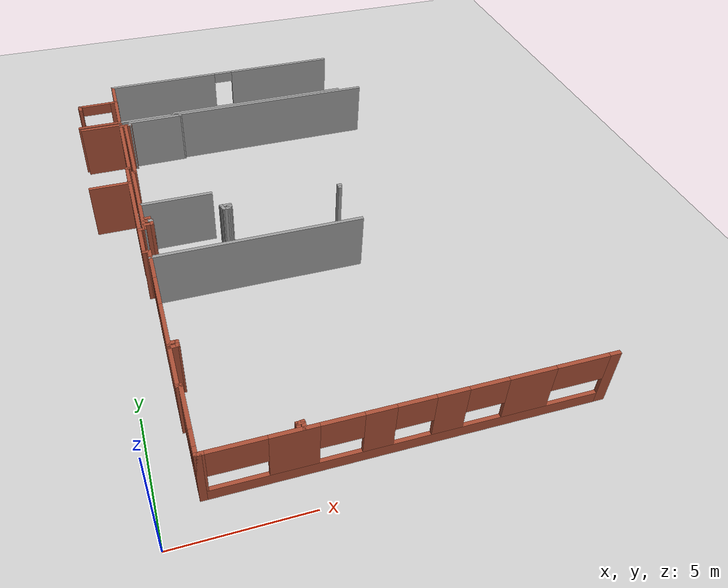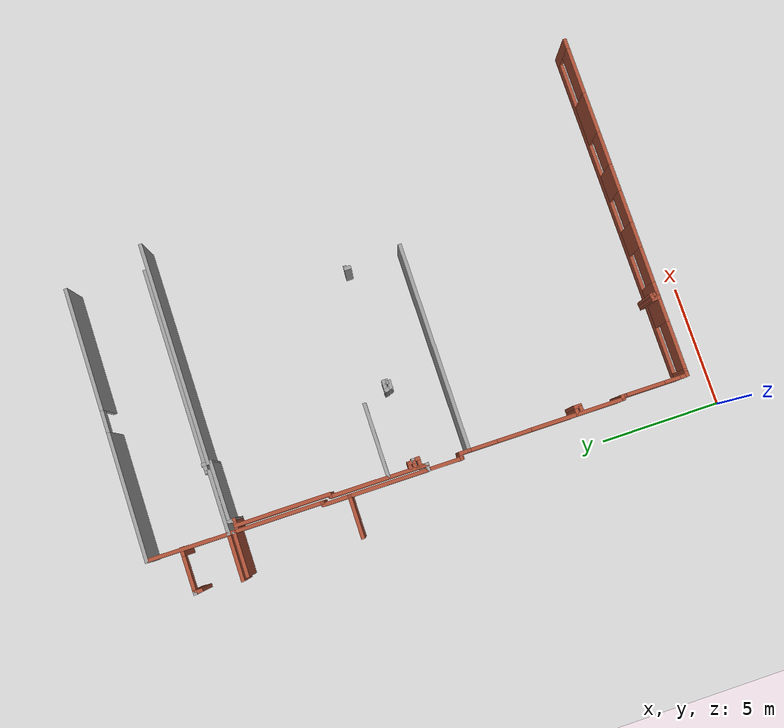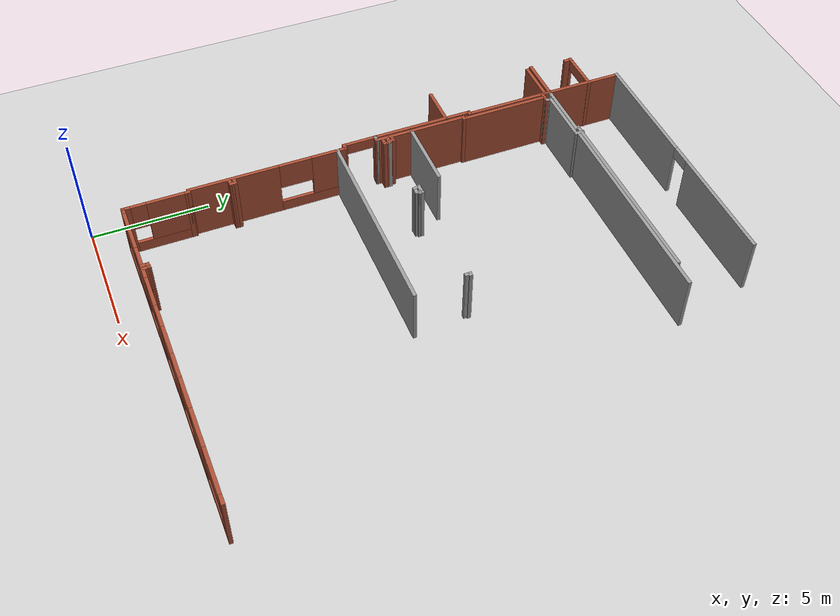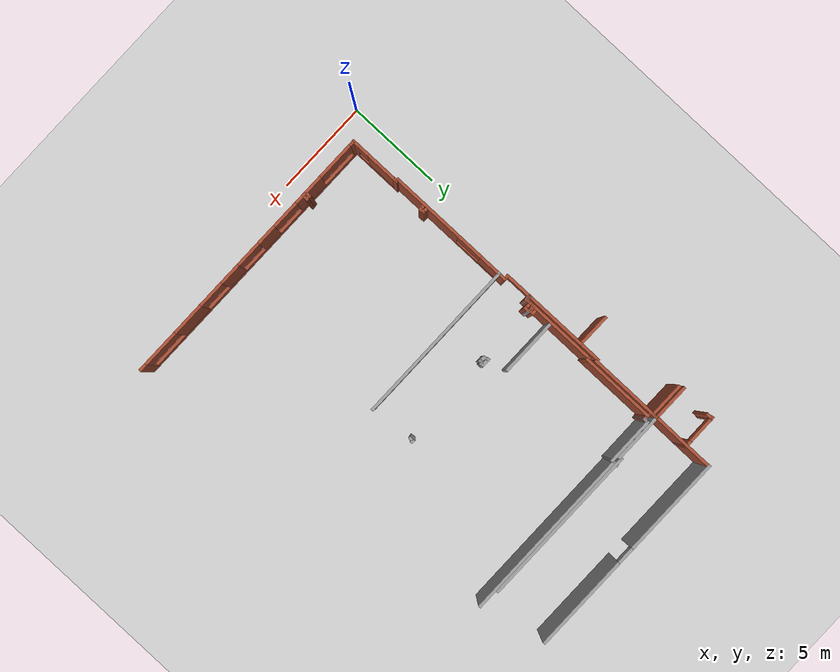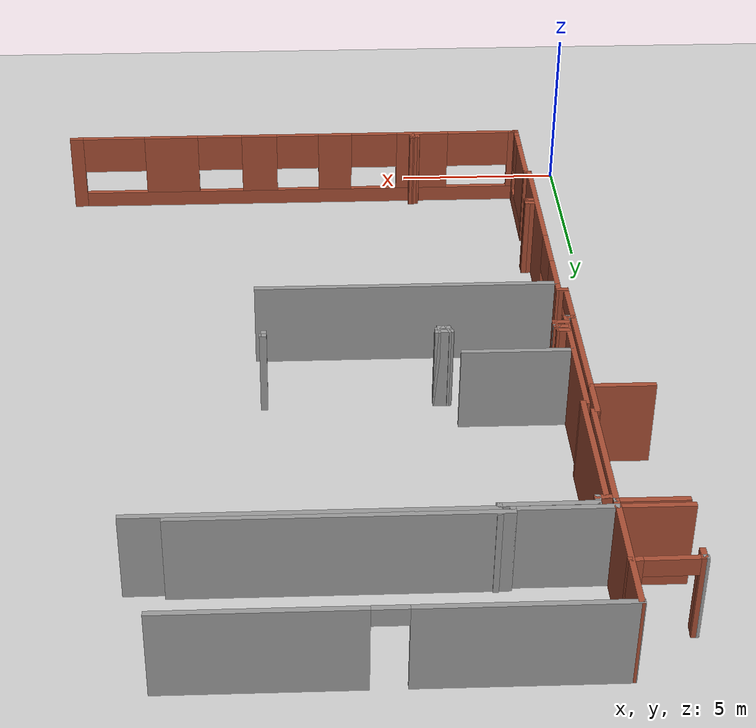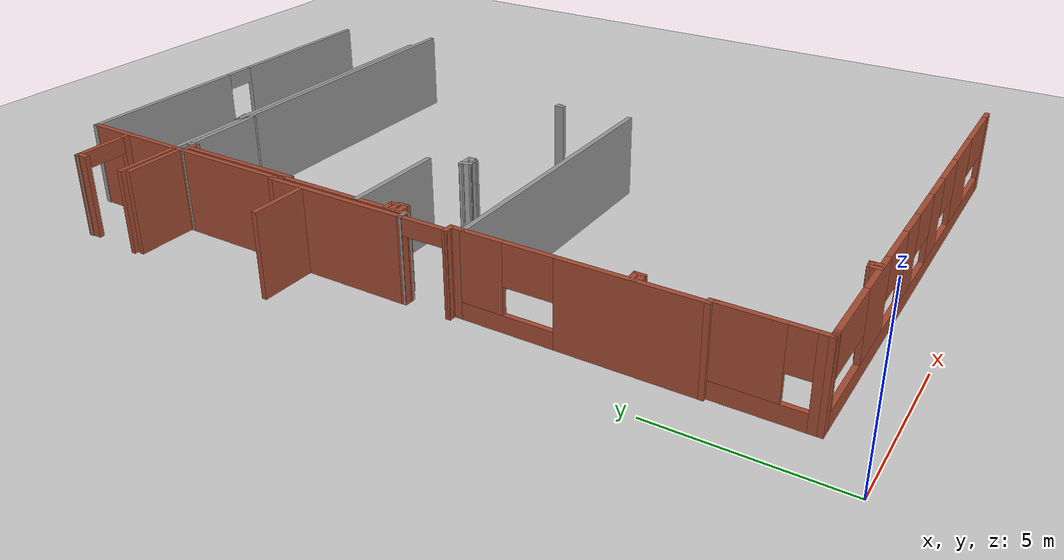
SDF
<sdf version="1.6">
 <world name="default">
  <model name="ground_plane">
   <static>1</static>
   <link name="link">
    <collision name="collision">
     <geometry><plane><normal>0 0 1</normal><size>100 100</size></plane></geometry>
     <surface><friction><ode><mu>100</mu><mu2>50</mu2></ode></friction></surface>
    </collision>
    <visual name="visual">
     <cast_shadows>0</cast_shadows>
     <geometry><plane><normal>0 0 1</normal><size>100 100</size></plane></geometry>
     <material>
      <script><uri>file://media/materials/scripts/gazebo.material</uri><name>Gazebo/Grey</name></script>
     </material>
    </visual>
   </link>
  </model>
  <model name="CVSSP">
   <pose>23.8714 24.094 0 0 -0 0</pose>
   <link name="Wall_440">
    <pose>-17.0303 -0.419062 0 0 -0 3.14158</pose>
    <visual name="Wall_440_Visual_0">
     <pose>-3.09878 0 1.25 0 -0 0</pose>
     <geometry><box><size>5.103 0.15 2.5</size></box></geometry>
     <material>
      <script><uri>file://media/materials/scripts/gazebo.material</uri><name>Gazebo/Grey</name></script>
      <ambient>0.588235 0.588235 0.588235 1</ambient>
     </material>
    </visual>
    <collision name="Wall_440_Collision_0">
     <geometry><box><size>5.103 0.15 2.5</size></box></geometry>
     <pose>-3.09878 0 1.25 0 -0 0</pose>
    </collision>
    <visual name="Wall_440_Visual_1">
     <pose>3.0015 0 1.25 0 -0 0</pose>
     <geometry><box><size>5.29756 0.15 2.5</size></box></geometry>
     <material>
      <script><uri>file://media/materials/scripts/gazebo.material</uri><name>Gazebo/Grey</name></script>
      <ambient>0.588235 0.588235 0.588235 1</ambient>
     </material>
    </visual>
    <collision name="Wall_440_Collision_1">
     <geometry><box><size>5.29756 0.15 2.5</size></box></geometry>
     <pose>3.0015 0 1.25 0 -0 0</pose>
    </collision>
    <visual name="Wall_440_Visual_2">
     <pose>-0.097282 0 2.25 0 -0 0</pose>
     <geometry><box><size>0.9 0.15 0.5</size></box></geometry>
     <material>
      <script><uri>file://media/materials/scripts/gazebo.material</uri><name>Gazebo/Grey</name></script>
      <ambient>0.588235 0.588235 0.588235 1</ambient>
     </material>
    </visual>
    <collision name="Wall_440_Collision_2">
     <geometry><box><size>0.9 0.15 0.5</size></box></geometry>
     <pose>-0.097282 0 2.25 0 -0 0</pose>
    </collision>
   </link>
   <link name="Wall_446">
    <collision name="Wall_446_Collision">
     <geometry><box><size>3.45993 0.15 2.5</size></box></geometry>
     <pose>0 0 1.25 0 -0 0</pose>
    </collision>
    <visual name="Wall_446_Visual">
     <pose>0 0 1.25 0 -0 0</pose>
     <geometry><box><size>3.45993 0.15 2.5</size></box></geometry>
     <material>
      <script><uri>file://media/materials/scripts/gazebo.material</uri><name>Gazebo/Bricks</name></script>
      <ambient>1 1 1 1</ambient>
     </material>
    </visual>
    <pose>-22.5968 -2.07393 0 0 0 -1.57608</pose>
   </link>
   <link name="Wall_447">
    <collision name="Wall_447_Collision">
     <geometry><box><size>2.66471 0.15 2.5</size></box></geometry>
     <pose>0 0 1.25 0 -0 0</pose>
    </collision>
    <visual name="Wall_447_Visual">
     <pose>0 0 1.25 0 -0 0</pose>
     <geometry><box><size>2.66471 0.15 2.5</size></box></geometry>
     <material>
      <script><uri>file://media/materials/scripts/gazebo.material</uri><name>Gazebo/Grey</name></script>
      <ambient>0.588235 0.588235 0.588235 1</ambient>
     </material>
    </visual>
    <pose>-21.3307 -3.72683 0 0 -0 0.001626</pose>
   </link>
   <link name="Wall_449">
    <collision name="Wall_449_Collision">
     <geometry><box><size>0.25 0.15 2.5</size></box></geometry>
     <pose>0 0 1.25 0 -0 0</pose>
    </collision>
    <visual name="Wall_449_Visual">
     <pose>0 0 1.25 0 -0 0</pose>
     <geometry><box><size>0.25 0.15 2.5</size></box></geometry>
     <material>
      <script><uri>file://media/materials/scripts/gazebo.material</uri><name>Gazebo/Grey</name></script>
      <ambient>1 1 1 1</ambient>
     </material>
    </visual>
    <pose>-20.0734 -3.67478 0 0 -0 1.5708</pose>
   </link>
   <link name="Wall_450">
    <collision name="Wall_450_Collision">
     <geometry><box><size>8.5 0.15 2.5</size></box></geometry>
     <pose>0 0 1.25 0 -0 0</pose>
    </collision>
    <visual name="Wall_450_Visual">
     <pose>0 0 1.25 0 -0 0</pose>
     <geometry><box><size>8.5 0.15 2.5</size></box></geometry>
     <material>
      <script><uri>file://media/materials/scripts/gazebo.material</uri><name>Gazebo/Grey</name></script>
      <ambient>0.588235 0.588235 0.588235 1</ambient>
     </material>
    </visual>
    <pose>-15.8984 -3.62478 0 0 -0 0</pose>
   </link>
   <link name="Wall_472">
    <pose>-23.462 -1.83453 0 0 0 -3.13211</pose>
    <visual name="Wall_472_Visual_0">
     <pose>-0.773733 0 1.25 0 -0 0</pose>
     <geometry><box><size>0.368389 0.15 2.5</size></box></geometry>
     <material>
      <script><uri>file://media/materials/scripts/gazebo.material</uri><name>Gazebo/Bricks</name></script>
      <ambient>1 1 1 1</ambient>
     </material>
    </visual>
    <collision name="Wall_472_Collision_0">
     <geometry><box><size>0.368389 0.15 2.5</size></box></geometry>
     <pose>-0.773733 0 1.25 0 -0 0</pose>
    </collision>
    <visual name="Wall_472_Visual_1">
     <pose>0.857678 0 1.25 0 -0 0</pose>
     <geometry><box><size>0.2005 0.15 2.5</size></box></geometry>
     <material>
      <script><uri>file://media/materials/scripts/gazebo.material</uri><name>Gazebo/Bricks</name></script>
      <ambient>1 1 1 1</ambient>
     </material>
    </visual>
    <collision name="Wall_472_Collision_1">
     <geometry><box><size>0.2005 0.15 2.5</size></box></geometry>
     <pose>0.857678 0 1.25 0 -0 0</pose>
    </collision>
    <visual name="Wall_472_Visual_2">
     <pose>0.083944 0 2.25 0 -0 0</pose>
     <geometry><box><size>1.34697 0.15 0.5</size></box></geometry>
     <material>
      <script><uri>file://media/materials/scripts/gazebo.material</uri><name>Gazebo/Bricks</name></script>
      <ambient>1 1 1 1</ambient>
     </material>
    </visual>
    <collision name="Wall_472_Collision_2">
     <geometry><box><size>1.34697 0.15 0.5</size></box></geometry>
     <pose>0.083944 0 2.25 0 -0 0</pose>
    </collision>
   </link>
   <link name="Wall_473">
    <collision name="Wall_473_Collision">
     <geometry><box><size>0.15 0.15 2.5</size></box></geometry>
     <pose>0 0 1.25 0 -0 0</pose>
    </collision>
    <visual name="Wall_473_Visual">
     <pose>0 0 1.25 0 -0 0</pose>
     <geometry><box><size>0.15 0.15 2.5</size></box></geometry>
     <material>
      <script><uri>file://media/materials/scripts/gazebo.material</uri><name>Gazebo/Grey</name></script>
      <ambient>1 1 1 1</ambient>
     </material>
    </visual>
    <pose>-24.3449 -1.8429 0 0 -0 0</pose>
   </link>
   <link name="Wall_476">
    <collision name="Wall_476_Collision">
     <geometry><box><size>0.342391 0.15 2.5</size></box></geometry>
     <pose>0 0 1.25 0 -0 0</pose>
    </collision>
    <visual name="Wall_476_Visual">
     <pose>0 0 1.25 0 -0 0</pose>
     <geometry><box><size>0.342391 0.15 2.5</size></box></geometry>
     <material>
      <script><uri>file://media/materials/scripts/gazebo.material</uri><name>Gazebo/Bricks</name></script>
      <ambient>1 1 1 1</ambient>
     </material>
    </visual>
    <pose>-24.3099 -1.99157 0 0 -0 1.5708</pose>
   </link>
   <link name="Wall_481">
    <collision name="Wall_481_Collision">
     <geometry><box><size>2 0.15 2.5</size></box></geometry>
     <pose>0 0 1.25 0 -0 0</pose>
    </collision>
    <visual name="Wall_481_Visual">
     <pose>0 0 1.25 0 -0 0</pose>
     <geometry><box><size>2 0.15 2.5</size></box></geometry>
     <material>
      <script><uri>file://media/materials/scripts/gazebo.material</uri><name>Gazebo/Bricks</name></script>
      <ambient>1 1 1 1</ambient>
     </material>
    </visual>
    <pose>-23.5131 -3.72887 0 0 -0 3.14159</pose>
   </link>
   <link name="Wall_483">
    <collision name="Wall_483_Collision">
     <geometry><box><size>0.368526 0.15 2.5</size></box></geometry>
     <pose>0 0 1.25 0 -0 0</pose>
    </collision>
    <visual name="Wall_483_Visual">
     <pose>0 0 1.25 0 -0 0</pose>
     <geometry><box><size>0.368526 0.15 2.5</size></box></geometry>
     <material>
      <script><uri>file://media/materials/scripts/gazebo.material</uri><name>Gazebo/Bricks</name></script>
      <ambient>1 1 1 1</ambient>
     </material>
    </visual>
    <pose>-22.5906 -3.83811 0 0 0 -1.59404</pose>
   </link>
   <link name="Wall_484">
    <collision name="Wall_484_Collision">
     <geometry><box><size>1.89901 0.15 2.5</size></box></geometry>
     <pose>0 0 1.25 0 -0 0</pose>
    </collision>
    <visual name="Wall_484_Visual">
     <pose>0 0 1.25 0 -0 0</pose>
     <geometry><box><size>1.89901 0.15 2.5</size></box></geometry>
     <material>
      <script><uri>file://media/materials/scripts/gazebo.material</uri><name>Gazebo/Bricks</name></script>
      <ambient>1 1 1 1</ambient>
     </material>
    </visual>
    <pose>-23.4677 -3.94734 0 0 -0 3.14159</pose>
   </link>
   <link name="Wall_486">
    <collision name="Wall_486_Collision">
     <geometry><box><size>0.44095 0.15 2.5</size></box></geometry>
     <pose>0 0 1.25 0 -0 0</pose>
    </collision>
    <visual name="Wall_486_Visual">
     <pose>0 0 1.25 0 -0 0</pose>
     <geometry><box><size>0.44095 0.15 2.5</size></box></geometry>
     <material>
      <script><uri>file://media/materials/scripts/gazebo.material</uri><name>Gazebo/Grey</name></script>
      <ambient>1 1 1 1</ambient>
     </material>
    </visual>
    <pose>-19.7491 -3.7278 0 0 0 -1.5708</pose>
   </link>
   <link name="Wall_487">
    <collision name="Wall_487_Collision">
     <geometry><box><size>2.55302 0.15 2.5</size></box></geometry>
     <pose>0 0 1.25 0 -0 0</pose>
    </collision>
    <visual name="Wall_487_Visual">
     <pose>0 0 1.25 0 -0 0</pose>
     <geometry><box><size>2.55302 0.15 2.5</size></box></geometry>
     <material>
      <script><uri>file://media/materials/scripts/gazebo.material</uri><name>Gazebo/Grey</name></script>
      <ambient>0.588235 0.588235 0.588235 1</ambient>
     </material>
    </visual>
    <pose>-20.9506 -3.87989 0 0 0 -3.13609</pose>
   </link>
   <link name="Wall_488">
    <collision name="Wall_488_Collision">
     <geometry><box><size>0.348298 0.15 2.5</size></box></geometry>
     <pose>0 0 1.25 0 -0 0</pose>
    </collision>
    <visual name="Wall_488_Visual">
     <pose>0 0 1.25 0 -0 0</pose>
     <geometry><box><size>0.348298 0.15 2.5</size></box></geometry>
     <material>
      <script><uri>file://media/materials/scripts/gazebo.material</uri><name>Gazebo/Grey</name></script>
      <ambient>1 1 1 1</ambient>
     </material>
    </visual>
    <pose>-22.1597 -3.98536 0 0 0 -1.64757</pose>
   </link>
   <link name="Wall_490">
    <collision name="Wall_490_Collision">
     <geometry><box><size>0.287462 0.15 2.5</size></box></geometry>
     <pose>0 0 1.25 0 -0 0</pose>
    </collision>
    <visual name="Wall_490_Visual">
     <pose>0 0 1.25 0 -0 0</pose>
     <geometry><box><size>0.287462 0.15 2.5</size></box></geometry>
     <material>
      <script><uri>file://media/materials/scripts/gazebo.material</uri><name>Gazebo/Grey</name></script>
      <ambient>1 1 1 1</ambient>
     </material>
    </visual>
    <pose>-22.5946 -4.01605 0 0 0 -1.59176</pose>
   </link>
   <link name="Wall_491">
    <collision name="Wall_491_Collision">
     <geometry><box><size>0.593962 0.15 2.5</size></box></geometry>
     <pose>0 0 1.25 0 -0 0</pose>
    </collision>
    <visual name="Wall_491_Visual">
     <pose>0 0 1.25 0 -0 0</pose>
     <geometry><box><size>0.593962 0.15 2.5</size></box></geometry>
     <material>
      <script><uri>file://media/materials/scripts/gazebo.material</uri><name>Gazebo/Bricks</name></script>
      <ambient>1 1 1 1</ambient>
     </material>
    </visual>
    <pose>-22.3741 -4.08449 0 0 -0 0.001245</pose>
   </link>
   <link name="Wall_493">
    <collision name="Wall_493_Collision">
     <geometry><box><size>3.61071 0.15 2.5</size></box></geometry>
     <pose>0 0 1.25 0 -0 0</pose>
    </collision>
    <visual name="Wall_493_Visual">
     <pose>0 0 1.25 0 -0 0</pose>
     <geometry><box><size>3.61071 0.15 2.5</size></box></geometry>
     <material>
      <script><uri>file://media/materials/scripts/gazebo.material</uri><name>Gazebo/Bricks</name></script>
      <ambient>1 1 1 1</ambient>
     </material>
    </visual>
    <pose>-22.5979 -5.81513 0 0 0 -1.57189</pose>
   </link>
   <link name="Wall_494">
    <collision name="Wall_494_Collision">
     <geometry><box><size>0.25 0.15 2.5</size></box></geometry>
     <pose>0 0 1.25 0 -0 0</pose>
    </collision>
    <visual name="Wall_494_Visual">
     <pose>0 0 1.25 0 -0 0</pose>
     <geometry><box><size>0.25 0.15 2.5</size></box></geometry>
     <material>
      <script><uri>file://media/materials/scripts/gazebo.material</uri><name>Gazebo/Bricks</name></script>
      <ambient>1 1 1 1</ambient>
     </material>
    </visual>
    <pose>-22.6498 -7.54548 0 0 -0 3.14159</pose>
   </link>
   <link name="Wall_495">
    <collision name="Wall_495_Collision">
     <geometry><box><size>1.21522 0.15 2.5</size></box></geometry>
     <pose>0 0 1.25 0 -0 0</pose>
    </collision>
    <visual name="Wall_495_Visual">
     <pose>0 0 1.25 0 -0 0</pose>
     <geometry><box><size>1.21522 0.15 2.5</size></box></geometry>
     <material>
      <script><uri>file://media/materials/scripts/gazebo.material</uri><name>Gazebo/Bricks</name></script>
      <ambient>1 1 1 1</ambient>
     </material>
    </visual>
    <pose>-22.6998 -8.07809 0 0 0 -1.5708</pose>
   </link>
   <link name="Wall_497">
    <collision name="Wall_497_Collision">
     <geometry><box><size>1.80653 0.15 2.5</size></box></geometry>
     <pose>0 0 1.25 0 -0 0</pose>
    </collision>
    <visual name="Wall_497_Visual">
     <pose>0 0 1.25 0 -0 0</pose>
     <geometry><box><size>1.80653 0.15 2.5</size></box></geometry>
     <material>
      <script><uri>file://media/materials/scripts/gazebo.material</uri><name>Gazebo/Bricks</name></script>
      <ambient>1 1 1 1</ambient>
     </material>
    </visual>
    <pose>-23.5281 -8.61722 0 0 -0 3.13897</pose>
   </link>
   <link name="Wall_500">
    <collision name="Wall_500_Collision">
     <geometry><box><size>3.96739 0.15 2.5</size></box></geometry>
     <pose>0 0 1.25 0 -0 0</pose>
    </collision>
    <visual name="Wall_500_Visual">
     <pose>0 0 1.25 0 -0 0</pose>
     <geometry><box><size>3.96739 0.15 2.5</size></box></geometry>
     <material>
      <script><uri>file://media/materials/scripts/gazebo.material</uri><name>Gazebo/Bricks</name></script>
      <ambient>1 1 1 1</ambient>
     </material>
    </visual>
    <pose>-22.3824 -5.99331 0 0 0 -1.5708</pose>
   </link>
   <link name="Wall_502">
    <collision name="Wall_502_Collision">
     <geometry><box><size>0.25 0.15 2.5</size></box></geometry>
     <pose>0 0 1.25 0 -0 0</pose>
    </collision>
    <visual name="Wall_502_Visual">
     <pose>0 0 1.25 0 -0 0</pose>
     <geometry><box><size>0.25 0.15 2.5</size></box></geometry>
     <material>
      <script><uri>file://media/materials/scripts/gazebo.material</uri><name>Gazebo/Bricks</name></script>
      <ambient>1 1 1 1</ambient>
     </material>
    </visual>
    <pose>-22.4324 -7.902 0 0 -0 3.14159</pose>
   </link>
   <link name="Wall_503">
    <collision name="Wall_503_Collision">
     <geometry><box><size>4.11037 0.15 2.5</size></box></geometry>
     <pose>0 0 1.25 0 -0 0</pose>
    </collision>
    <visual name="Wall_503_Visual">
     <pose>0 0 1.25 0 -0 0</pose>
     <geometry><box><size>4.11037 0.15 2.5</size></box></geometry>
     <material>
      <script><uri>file://media/materials/scripts/gazebo.material</uri><name>Gazebo/Bricks</name></script>
      <ambient>1 1 1 1</ambient>
     </material>
    </visual>
    <pose>-22.4867 -9.88218 0 0 0 -1.57292</pose>
   </link>
   <link name="Wall_519">
    <collision name="Wall_519_Collision">
     <geometry><box><size>0.25 0.15 2.5</size></box></geometry>
     <pose>0 0 1.25 0 -0 0</pose>
    </collision>
    <visual name="Wall_519_Visual">
     <pose>0 0 1.25 0 -0 0</pose>
     <geometry><box><size>0.25 0.15 2.5</size></box></geometry>
     <material>
      <script><uri>file://media/materials/scripts/gazebo.material</uri><name>Gazebo/Bricks</name></script>
      <ambient>1 1 1 1</ambient>
     </material>
    </visual>
    <pose>-22.3838 -11.3942 0 0 -0 3.14159</pose>
   </link>
   <link name="Wall_521">
    <collision name="Wall_521_Collision">
     <geometry><box><size>0.355195 0.15 2.5</size></box></geometry>
     <pose>0 0 1.25 0 -0 0</pose>
    </collision>
    <visual name="Wall_521_Visual">
     <pose>0 0 1.25 0 -0 0</pose>
     <geometry><box><size>0.355195 0.15 2.5</size></box></geometry>
     <material>
      <script><uri>file://media/materials/scripts/gazebo.material</uri><name>Gazebo/Grey</name></script>
      <ambient>1 1 1 1</ambient>
     </material>
    </visual>
    <pose>-22.5934 -11.8574 0 0 -0 3.09357</pose>
   </link>
   <link name="Wall_522">
    <collision name="Wall_522_Collision">
     <geometry><box><size>3.38312 0.15 2.5</size></box></geometry>
     <pose>0 0 1.25 0 -0 0</pose>
    </collision>
    <visual name="Wall_522_Visual">
     <pose>0 0 1.25 0 -0 0</pose>
     <geometry><box><size>3.38312 0.15 2.5</size></box></geometry>
     <material>
      <script><uri>file://media/materials/scripts/gazebo.material</uri><name>Gazebo/Bricks</name></script>
      <ambient>1 1 1 1</ambient>
     </material>
    </visual>
    <pose>-22.6978 -10.236 0 0 -0 1.57204</pose>
   </link>
   <link name="Wall_545">
    <pose>-15.118 -22.7033 0 0 -0 3.14159</pose>
    <visual name="Wall_545_Visual_0">
     <pose>-7.03884 0 1.25 0 -0 0</pose>
     <geometry><box><size>0.42232 0.15 2.5</size></box></geometry>
     <material>
      <script><uri>file://media/materials/scripts/gazebo.material</uri><name>Gazebo/Bricks</name></script>
      <ambient>1 1 1 1</ambient>
     </material>
    </visual>
    <collision name="Wall_545_Collision_0">
     <geometry><box><size>0.42232 0.15 2.5</size></box></geometry>
     <pose>-7.03884 0 1.25 0 -0 0</pose>
    </collision>
    <visual name="Wall_545_Visual_1">
     <pose>0.21116 0 0.25 0 -0 0</pose>
     <geometry><box><size>14.0777 0.15 0.5</size></box></geometry>
     <material>
      <script><uri>file://media/materials/scripts/gazebo.material</uri><name>Gazebo/Bricks</name></script>
      <ambient>1 1 1 1</ambient>
     </material>
    </visual>
    <collision name="Wall_545_Collision_1">
     <geometry><box><size>14.0777 0.15 0.5</size></box></geometry>
     <pose>0.21116 0 0.25 0 -0 0</pose>
    </collision>
    <visual name="Wall_545_Visual_2">
     <pose>-3.98026 0 1.5 0 -0 0</pose>
     <geometry><box><size>1.72991 0.15 2</size></box></geometry>
     <material>
      <script><uri>file://media/materials/scripts/gazebo.material</uri><name>Gazebo/Bricks</name></script>
      <ambient>1 1 1 1</ambient>
     </material>
    </visual>
    <collision name="Wall_545_Collision_2">
     <geometry><box><size>1.72991 0.15 2</size></box></geometry>
     <pose>-3.98026 0 1.5 0 -0 0</pose>
    </collision>
    <visual name="Wall_545_Visual_3">
     <pose>-1.12108 0 1.5 0 -0 0</pose>
     <geometry><box><size>1.14417 0.15 2</size></box></geometry>
     <material>
      <script><uri>file://media/materials/scripts/gazebo.material</uri><name>Gazebo/Bricks</name></script>
      <ambient>1 1 1 1</ambient>
     </material>
    </visual>
    <collision name="Wall_545_Collision_3">
     <geometry><box><size>1.14417 0.15 2</size></box></geometry>
     <pose>-1.12108 0 1.5 0 -0 0</pose>
    </collision>
    <visual name="Wall_545_Visual_4">
     <pose>1.34801 0 1.5 0 -0 0</pose>
     <geometry><box><size>1.07936 0.15 2</size></box></geometry>
     <material>
      <script><uri>file://media/materials/scripts/gazebo.material</uri><name>Gazebo/Bricks</name></script>
      <ambient>1 1 1 1</ambient>
     </material>
    </visual>
    <collision name="Wall_545_Collision_4">
     <geometry><box><size>1.07936 0.15 2</size></box></geometry>
     <pose>1.34801 0 1.5 0 -0 0</pose>
    </collision>
    <visual name="Wall_545_Visual_5">
     <pose>4.2027 0 1.5 0 -0 0</pose>
     <geometry><box><size>1.66909 0.15 2</size></box></geometry>
     <material>
      <script><uri>file://media/materials/scripts/gazebo.material</uri><name>Gazebo/Bricks</name></script>
      <ambient>1 1 1 1</ambient>
     </material>
    </visual>
    <collision name="Wall_545_Collision_5">
     <geometry><box><size>1.66909 0.15 2</size></box></geometry>
     <pose>4.2027 0 1.5 0 -0 0</pose>
    </collision>
    <visual name="Wall_545_Visual_6">
     <pose>7.13335 0 1.5 0 -0 0</pose>
     <geometry><box><size>0.233292 0.15 2</size></box></geometry>
     <material>
      <script><uri>file://media/materials/scripts/gazebo.material</uri><name>Gazebo/Bricks</name></script>
      <ambient>1 1 1 1</ambient>
     </material>
    </visual>
    <collision name="Wall_545_Collision_6">
     <geometry><box><size>0.233292 0.15 2</size></box></geometry>
     <pose>7.13335 0 1.5 0 -0 0</pose>
    </collision>
    <visual name="Wall_545_Visual_7">
     <pose>-5.83645 0 1.9 0 -0 0</pose>
     <geometry><box><size>1.98247 0.15 1.2</size></box></geometry>
     <material>
      <script><uri>file://media/materials/scripts/gazebo.material</uri><name>Gazebo/Bricks</name></script>
      <ambient>1 1 1 1</ambient>
     </material>
    </visual>
    <collision name="Wall_545_Collision_7">
     <geometry><box><size>1.98247 0.15 1.2</size></box></geometry>
     <pose>-5.83645 0 1.9 0 -0 0</pose>
    </collision>
    <visual name="Wall_545_Visual_8">
     <pose>-2.40424 0 1.9 0 -0 0</pose>
     <geometry><box><size>1.42213 0.15 1.2</size></box></geometry>
     <material>
      <script><uri>file://media/materials/scripts/gazebo.material</uri><name>Gazebo/Bricks</name></script>
      <ambient>1 1 1 1</ambient>
     </material>
    </visual>
    <collision name="Wall_545_Collision_8">
     <geometry><box><size>1.42213 0.15 1.2</size></box></geometry>
     <pose>-2.40424 0 1.9 0 -0 0</pose>
    </collision>
    <visual name="Wall_545_Visual_9">
     <pose>0.129664 0 1.9 0 -0 0</pose>
     <geometry><box><size>1.35733 0.15 1.2</size></box></geometry>
     <material>
      <script><uri>file://media/materials/scripts/gazebo.material</uri><name>Gazebo/Bricks</name></script>
      <ambient>1 1 1 1</ambient>
     </material>
    </visual>
    <collision name="Wall_545_Collision_9">
     <geometry><box><size>1.35733 0.15 1.2</size></box></geometry>
     <pose>0.129664 0 1.9 0 -0 0</pose>
    </collision>
    <visual name="Wall_545_Visual_10">
     <pose>2.62792 0 1.9 0 -0 0</pose>
     <geometry><box><size>1.48046 0.15 1.2</size></box></geometry>
     <material>
      <script><uri>file://media/materials/scripts/gazebo.material</uri><name>Gazebo/Bricks</name></script>
      <ambient>1 1 1 1</ambient>
     </material>
    </visual>
    <collision name="Wall_545_Collision_10">
     <geometry><box><size>1.48046 0.15 1.2</size></box></geometry>
     <pose>2.62792 0 1.9 0 -0 0</pose>
    </collision>
    <visual name="Wall_545_Visual_11">
     <pose>6.02698 0 1.9 0 -0 0</pose>
     <geometry><box><size>1.97946 0.15 1.2</size></box></geometry>
     <material>
      <script><uri>file://media/materials/scripts/gazebo.material</uri><name>Gazebo/Bricks</name></script>
      <ambient>1 1 1 1</ambient>
     </material>
    </visual>
    <collision name="Wall_545_Collision_11">
     <geometry><box><size>1.97946 0.15 1.2</size></box></geometry>
     <pose>6.02698 0 1.9 0 -0 0</pose>
    </collision>
   </link>
   <link name="Wall_546">
    <collision name="Wall_546_Collision">
     <geometry><box><size>0.25 0.15 2.5</size></box></geometry>
     <pose>0 0 1.25 0 -0 0</pose>
    </collision>
    <visual name="Wall_546_Visual">
     <pose>0 0 1.25 0 -0 0</pose>
     <geometry><box><size>0.25 0.15 2.5</size></box></geometry>
     <material>
      <script><uri>file://media/materials/scripts/gazebo.material</uri><name>Gazebo/Bricks</name></script>
      <ambient>1 1 1 1</ambient>
     </material>
    </visual>
    <pose>-22.343 -22.7033 0 0 -0 3.14159</pose>
   </link>
   <link name="Wall_547">
    <pose>-22.393 -21.4033 0 0 -0 1.5708</pose>
    <visual name="Wall_547_Visual_0">
     <pose>-1.18725 0 1.25 0 -0 0</pose>
     <geometry><box><size>0.375498 0.15 2.5</size></box></geometry>
     <material>
      <script><uri>file://media/materials/scripts/gazebo.material</uri><name>Gazebo/Bricks</name></script>
      <ambient>1 1 1 1</ambient>
     </material>
    </visual>
    <collision name="Wall_547_Collision_0">
     <geometry><box><size>0.375498 0.15 2.5</size></box></geometry>
     <pose>-1.18725 0 1.25 0 -0 0</pose>
    </collision>
    <visual name="Wall_547_Visual_1">
     <pose>0.187749 0 0.25 0 -0 0</pose>
     <geometry><box><size>2.3745 0.15 0.5</size></box></geometry>
     <material>
      <script><uri>file://media/materials/scripts/gazebo.material</uri><name>Gazebo/Bricks</name></script>
      <ambient>1 1 1 1</ambient>
     </material>
    </visual>
    <collision name="Wall_547_Collision_1">
     <geometry><box><size>2.3745 0.15 0.5</size></box></geometry>
     <pose>0.187749 0 0.25 0 -0 0</pose>
    </collision>
    <visual name="Wall_547_Visual_2">
     <pose>0.509982 0 1.5 0 -0 0</pose>
     <geometry><box><size>1.73004 0.15 2</size></box></geometry>
     <material>
      <script><uri>file://media/materials/scripts/gazebo.material</uri><name>Gazebo/Bricks</name></script>
      <ambient>1 1 1 1</ambient>
     </material>
    </visual>
    <collision name="Wall_547_Collision_2">
     <geometry><box><size>1.73004 0.15 2</size></box></geometry>
     <pose>0.509982 0 1.5 0 -0 0</pose>
    </collision>
    <visual name="Wall_547_Visual_3">
     <pose>-0.677269 0 1.9 0 -0 0</pose>
     <geometry><box><size>0.644466 0.15 1.2</size></box></geometry>
     <material>
      <script><uri>file://media/materials/scripts/gazebo.material</uri><name>Gazebo/Bricks</name></script>
      <ambient>1 1 1 1</ambient>
     </material>
    </visual>
    <collision name="Wall_547_Collision_3">
     <geometry><box><size>0.644466 0.15 1.2</size></box></geometry>
     <pose>-0.677269 0 1.9 0 -0 0</pose>
    </collision>
   </link>
   <link name="Wall_548">
    <collision name="Wall_548_Collision">
     <geometry><box><size>0.25 0.15 2.5</size></box></geometry>
     <pose>0 0 1.25 0 -0 0</pose>
    </collision>
    <visual name="Wall_548_Visual">
     <pose>0 0 1.25 0 -0 0</pose>
     <geometry><box><size>0.25 0.15 2.5</size></box></geometry>
     <material>
      <script><uri>file://media/materials/scripts/gazebo.material</uri><name>Gazebo/Bricks</name></script>
      <ambient>1 1 1 1</ambient>
     </material>
    </visual>
    <pose>-22.393 -20.0533 0 0 -0 1.5708</pose>
   </link>
   <link name="Wall_549">
    <collision name="Wall_549_Collision">
     <geometry><box><size>0.25 0.15 2.5</size></box></geometry>
     <pose>0 0 1.25 0 -0 0</pose>
    </collision>
    <visual name="Wall_549_Visual">
     <pose>0 0 1.25 0 -0 0</pose>
     <geometry><box><size>0.25 0.15 2.5</size></box></geometry>
     <material>
      <script><uri>file://media/materials/scripts/gazebo.material</uri><name>Gazebo/Bricks</name></script>
      <ambient>1 1 1 1</ambient>
     </material>
    </visual>
    <pose>-22.443 -20.0033 0 0 -0 3.14159</pose>
   </link>
   <link name="Wall_550">
    <pose>-22.493 -16.8108 0 0 -0 1.5708</pose>
    <visual name="Wall_550_Visual_0">
     <pose>-1.31523 0 1.25 0 -0 0</pose>
     <geometry><box><size>3.90453 0.15 2.5</size></box></geometry>
     <material>
      <script><uri>file://media/materials/scripts/gazebo.material</uri><name>Gazebo/Bricks</name></script>
      <ambient>1 1 1 1</ambient>
     </material>
    </visual>
    <collision name="Wall_550_Collision_0">
     <geometry><box><size>3.90453 0.15 2.5</size></box></geometry>
     <pose>-1.31523 0 1.25 0 -0 0</pose>
    </collision>
    <visual name="Wall_550_Visual_1">
     <pose>1.95226 0 0.25 0 -0 0</pose>
     <geometry><box><size>2.63045 0.15 0.5</size></box></geometry>
     <material>
      <script><uri>file://media/materials/scripts/gazebo.material</uri><name>Gazebo/Bricks</name></script>
      <ambient>1 1 1 1</ambient>
     </material>
    </visual>
    <collision name="Wall_550_Collision_1">
     <geometry><box><size>2.63045 0.15 0.5</size></box></geometry>
     <pose>1.95226 0 0.25 0 -0 0</pose>
    </collision>
    <visual name="Wall_550_Visual_2">
     <pose>2.66009 0 1.5 0 -0 0</pose>
     <geometry><box><size>1.2148 0.15 2</size></box></geometry>
     <material>
      <script><uri>file://media/materials/scripts/gazebo.material</uri><name>Gazebo/Bricks</name></script>
      <ambient>1 1 1 1</ambient>
     </material>
    </visual>
    <collision name="Wall_550_Collision_2">
     <geometry><box><size>1.2148 0.15 2</size></box></geometry>
     <pose>2.66009 0 1.5 0 -0 0</pose>
    </collision>
    <visual name="Wall_550_Visual_3">
     <pose>1.34487 0 1.9 0 -0 0</pose>
     <geometry><box><size>1.41565 0.15 1.2</size></box></geometry>
     <material>
      <script><uri>file://media/materials/scripts/gazebo.material</uri><name>Gazebo/Bricks</name></script>
      <ambient>1 1 1 1</ambient>
     </material>
    </visual>
    <collision name="Wall_550_Collision_3">
     <geometry><box><size>1.41565 0.15 1.2</size></box></geometry>
     <pose>1.34487 0 1.9 0 -0 0</pose>
    </collision>
   </link>
   <link name="Wall_551">
    <collision name="Wall_551_Collision">
     <geometry><box><size>8.71502 0.15 2.5</size></box></geometry>
     <pose>0 0 1.25 0 -0 0</pose>
    </collision>
    <visual name="Wall_551_Visual">
     <pose>0 0 1.25 0 -0 0</pose>
     <geometry><box><size>8.71502 0.15 2.5</size></box></geometry>
     <material>
      <script><uri>file://media/materials/scripts/gazebo.material</uri><name>Gazebo/Grey</name></script>
      <ambient>0.588235 0.588235 0.588235 1</ambient>
     </material>
    </visual>
    <pose>-18.2105 -13.6008 0 0 -0 0</pose>
   </link>
   <link name="Wall_563">
    <collision name="Wall_563_Collision">
     <geometry><box><size>0.201879 0.15 2.5</size></box></geometry>
     <pose>0 0 1.25 0 -0 0</pose>
    </collision>
    <visual name="Wall_563_Visual">
     <pose>0 0 1.25 0 -0 0</pose>
     <geometry><box><size>0.201879 0.15 2.5</size></box></geometry>
     <material>
      <script><uri>file://media/materials/scripts/gazebo.material</uri><name>Gazebo/Grey</name></script>
      <ambient>1 1 1 1</ambient>
     </material>
    </visual>
    <pose>-14.0943 -11.2512 0 0 -0 3.14159</pose>
   </link>
   <link name="Wall_564">
    <collision name="Wall_564_Collision">
     <geometry><box><size>0.296991 0.15 2.5</size></box></geometry>
     <pose>0 0 1.25 0 -0 0</pose>
    </collision>
    <visual name="Wall_564_Visual">
     <pose>0 0 1.25 0 -0 0</pose>
     <geometry><box><size>0.296991 0.15 2.5</size></box></geometry>
     <material>
      <script><uri>file://media/materials/scripts/gazebo.material</uri><name>Gazebo/Grey</name></script>
      <ambient>1 1 1 1</ambient>
     </material>
    </visual>
    <pose>-14.1203 -11.3247 0 0 0 -1.5708</pose>
   </link>
   <link name="Wall_580">
    <collision name="Wall_580_Collision">
     <geometry><box><size>0.5 0.15 2.5</size></box></geometry>
     <pose>0 0 1.25 0 -0 0</pose>
    </collision>
    <visual name="Wall_580_Visual">
     <pose>0 0 1.25 0 -0 0</pose>
     <geometry><box><size>0.5 0.15 2.5</size></box></geometry>
     <material>
      <script><uri>file://media/materials/scripts/gazebo.material</uri><name>Gazebo/Bricks</name></script>
      <ambient>1 1 1 1</ambient>
     </material>
    </visual>
    <pose>-22.493 -13.4258 0 0 -0 1.5708</pose>
   </link>
   <link name="Wall_581">
    <collision name="Wall_581_Collision">
     <geometry><box><size>0.348832 0.15 2.5</size></box></geometry>
     <pose>0 0 1.25 0 -0 0</pose>
    </collision>
    <visual name="Wall_581_Visual">
     <pose>0 0 1.25 0 -0 0</pose>
     <geometry><box><size>0.348832 0.15 2.5</size></box></geometry>
     <material>
      <script><uri>file://media/materials/scripts/gazebo.material</uri><name>Gazebo/Bricks</name></script>
      <ambient>1 1 1 1</ambient>
     </material>
    </visual>
    <pose>-22.5923 -13.2456 0 0 -0 3.0892</pose>
   </link>
   <link name="Wall_582">
    <pose>-22.6937 -12.553 0 0 -0 1.57386</pose>
    <visual name="Wall_582_Visual_0">
     <pose>-0.687932 0 1.25 0 -0 0</pose>
     <geometry><box><size>0.162022 0.15 2.5</size></box></geometry>
     <material>
      <script><uri>file://media/materials/scripts/gazebo.material</uri><name>Gazebo/Bricks</name></script>
      <ambient>1 1 1 1</ambient>
     </material>
    </visual>
    <collision name="Wall_582_Collision_0">
     <geometry><box><size>0.162022 0.15 2.5</size></box></geometry>
     <pose>-0.687932 0 1.25 0 -0 0</pose>
    </collision>
    <visual name="Wall_582_Visual_1">
     <pose>0.695242 0 1.25 0 -0 0</pose>
     <geometry><box><size>0.147402 0.15 2.5</size></box></geometry>
     <material>
      <script><uri>file://media/materials/scripts/gazebo.material</uri><name>Gazebo/Bricks</name></script>
      <ambient>1 1 1 1</ambient>
     </material>
    </visual>
    <collision name="Wall_582_Collision_1">
     <geometry><box><size>0.147402 0.15 2.5</size></box></geometry>
     <pose>0.695242 0 1.25 0 -0 0</pose>
    </collision>
    <visual name="Wall_582_Visual_2">
     <pose>0.00731 0 2.25 0 -0 0</pose>
     <geometry><box><size>1.22846 0.15 0.5</size></box></geometry>
     <material>
      <script><uri>file://media/materials/scripts/gazebo.material</uri><name>Gazebo/Bricks</name></script>
      <ambient>1 1 1 1</ambient>
     </material>
    </visual>
    <collision name="Wall_582_Collision_2">
     <geometry><box><size>1.22846 0.15 0.5</size></box></geometry>
     <pose>0.00731 0 2.25 0 -0 0</pose>
    </collision>
   </link>
   <link name="Wall_584">
    <collision name="Wall_584_Collision">
     <geometry><box><size>3.0958 0.15 2.5</size></box></geometry>
     <pose>0 0 1.25 0 -0 0</pose>
    </collision>
    <visual name="Wall_584_Visual">
     <pose>0 0 1.25 0 -0 0</pose>
     <geometry><box><size>3.0958 0.15 2.5</size></box></geometry>
     <material>
      <script><uri>file://media/materials/scripts/gazebo.material</uri><name>Gazebo/Grey</name></script>
      <ambient>0.588235 0.588235 0.588235 1</ambient>
     </material>
    </visual>
    <pose>-20.9847 -10.2804 0 0 0 -0.001578</pose>
   </link>
   <link name="Wall_592">
    <collision name="Wall_592_Collision">
     <geometry><box><size>9.22236 0.15 2.5</size></box></geometry>
     <pose>0 0 1.25 0 -0 0</pose>
    </collision>
    <visual name="Wall_592_Visual">
     <pose>0 0 1.25 0 -0 0</pose>
     <geometry><box><size>9.22236 0.15 2.5</size></box></geometry>
     <material>
      <script><uri>file://media/materials/scripts/gazebo.material</uri><name>Gazebo/Grey</name></script>
      <ambient>0.588235 0.588235 0.588235 1</ambient>
     </material>
    </visual>
    <pose>-15.1997 -3.76312 0 0 -0 0.001458</pose>
   </link>
   <link name="Wall_780">
    <collision name="Wall_780_Collision">
     <geometry><box><size>0.376102 0.15 2.5</size></box></geometry>
     <pose>0 0 1.25 0 -0 0</pose>
    </collision>
    <visual name="Wall_780_Visual">
     <pose>0 0 1.25 0 -0 0</pose>
     <geometry><box><size>0.376102 0.15 2.5</size></box></geometry>
     <material>
      <script><uri>file://media/materials/scripts/gazebo.material</uri><name>Gazebo/Bricks</name></script>
      <ambient>1 1 1 1</ambient>
     </material>
    </visual>
    <pose>-22.338 -11.2138 0 0 -0 0</pose>
   </link>
   <link name="Wall_781">
    <collision name="Wall_781_Collision">
     <geometry><box><size>0.336201 0.15 2.5</size></box></geometry>
     <pose>0 0 1.25 0 -0 0</pose>
    </collision>
    <visual name="Wall_781_Visual">
     <pose>0 0 1.25 0 -0 0</pose>
     <geometry><box><size>0.336201 0.15 2.5</size></box></geometry>
     <material>
      <script><uri>file://media/materials/scripts/gazebo.material</uri><name>Gazebo/Bricks</name></script>
      <ambient>1 1 1 1</ambient>
     </material>
    </visual>
    <pose>-22.225 -11.3069 0 0 0 -1.5708</pose>
   </link>
   <link name="Wall_782">
    <collision name="Wall_782_Collision">
     <geometry><box><size>0.2165 0.15 2.5</size></box></geometry>
     <pose>0 0 1.25 0 -0 0</pose>
    </collision>
    <visual name="Wall_782_Visual">
     <pose>0 0 1.25 0 -0 0</pose>
     <geometry><box><size>0.2165 0.15 2.5</size></box></geometry>
     <material>
      <script><uri>file://media/materials/scripts/gazebo.material</uri><name>Gazebo/Grey</name></script>
      <ambient>1 1 1 1</ambient>
     </material>
    </visual>
    <pose>-22.1917 -11.4 0 0 -0 0</pose>
   </link>
   <link name="Wall_783">
    <collision name="Wall_783_Collision">
     <geometry><box><size>0.362802 0.15 2.5</size></box></geometry>
     <pose>0 0 1.25 0 -0 0</pose>
    </collision>
    <visual name="Wall_783_Visual">
     <pose>0 0 1.25 0 -0 0</pose>
     <geometry><box><size>0.362802 0.15 2.5</size></box></geometry>
     <material>
      <script><uri>file://media/materials/scripts/gazebo.material</uri><name>Gazebo/Bricks</name></script>
      <ambient>1 1 1 1</ambient>
     </material>
    </visual>
    <pose>-22.1585 -11.5064 0 0 0 -1.5708</pose>
   </link>
   <link name="Wall_784">
    <collision name="Wall_784_Collision">
     <geometry><box><size>0.495803 0.15 2.5</size></box></geometry>
     <pose>0 0 1.25 0 -0 0</pose>
    </collision>
    <visual name="Wall_784_Visual">
     <pose>0 0 1.25 0 -0 0</pose>
     <geometry><box><size>0.495803 0.15 2.5</size></box></geometry>
     <material>
      <script><uri>file://media/materials/scripts/gazebo.material</uri><name>Gazebo/Bricks</name></script>
      <ambient>1 1 1 1</ambient>
     </material>
    </visual>
    <pose>-22.3314 -11.6128 0 0 -0 3.14159</pose>
   </link>
   <link name="Wall_785">
    <collision name="Wall_785_Collision">
     <geometry><box><size>0.399947 0.15 2.5</size></box></geometry>
     <pose>0 0 1.25 0 -0 0</pose>
    </collision>
    <visual name="Wall_785_Visual">
     <pose>0 0 1.25 0 -0 0</pose>
     <geometry><box><size>0.399947 0.15 2.5</size></box></geometry>
     <material>
      <script><uri>file://media/materials/scripts/gazebo.material</uri><name>Gazebo/Bricks</name></script>
      <ambient>1 1 1 1</ambient>
     </material>
    </visual>
    <pose>-22.4976 -11.7376 0 0 0 -1.51707</pose>
   </link>
   <link name="Wall_786">
    <collision name="Wall_786_Collision">
     <geometry><box><size>0.354983 0.15 2.5</size></box></geometry>
     <pose>0 0 1.25 0 -0 0</pose>
    </collision>
    <visual name="Wall_786_Visual">
     <pose>0 0 1.25 0 -0 0</pose>
     <geometry><box><size>0.354983 0.15 2.5</size></box></geometry>
     <material>
      <script><uri>file://media/materials/scripts/gazebo.material</uri><name>Gazebo/Bricks</name></script>
      <ambient>1 1 1 1</ambient>
     </material>
    </visual>
    <pose>-22.5934 -11.8607 0 0 -0 3.12561</pose>
   </link>
   <link name="Wall_788">
    <collision name="Wall_788_Collision">
     <geometry><box><size>0.509103 0.15 2.5</size></box></geometry>
     <pose>0 0 1.25 0 -0 0</pose>
    </collision>
    <visual name="Wall_788_Visual">
     <pose>0 0 1.25 0 -0 0</pose>
     <geometry><box><size>0.509103 0.15 2.5</size></box></geometry>
     <material>
      <script><uri>file://media/materials/scripts/gazebo.material</uri><name>Gazebo/Grey</name></script>
      <ambient>0.588235 0.588235 0.588235 1</ambient>
     </material>
    </visual>
    <pose>-19.0662 -11.267 0 0 -0 0</pose>
   </link>
   <link name="Wall_789">
    <collision name="Wall_789_Collision">
     <geometry><box><size>0.25 0.15 2.5</size></box></geometry>
     <pose>0 0 1.25 0 -0 0</pose>
    </collision>
    <visual name="Wall_789_Visual">
     <pose>0 0 1.25 0 -0 0</pose>
     <geometry><box><size>0.25 0.15 2.5</size></box></geometry>
     <material>
      <script><uri>file://media/materials/scripts/gazebo.material</uri><name>Gazebo/Grey</name></script>
      <ambient>1 1 1 1</ambient>
     </material>
    </visual>
    <pose>-18.8867 -11.317 0 0 0 -1.5708</pose>
   </link>
   <link name="Wall_790">
    <collision name="Wall_790_Collision">
     <geometry><box><size>0.216808 0.15 2.5</size></box></geometry>
     <pose>0 0 1.25 0 -0 0</pose>
    </collision>
    <visual name="Wall_790_Visual">
     <pose>0 0 1.25 0 -0 0</pose>
     <geometry><box><size>0.216808 0.15 2.5</size></box></geometry>
     <material>
      <script><uri>file://media/materials/scripts/gazebo.material</uri><name>Gazebo/Grey</name></script>
      <ambient>1 1 1 1</ambient>
     </material>
    </visual>
    <pose>-18.9199 -11.3702 0 0 0 -3.04564</pose>
   </link>
   <link name="Wall_791">
    <collision name="Wall_791_Collision">
     <geometry><box><size>0.25 0.15 2.5</size></box></geometry>
     <pose>0 0 1.25 0 -0 0</pose>
    </collision>
    <visual name="Wall_791_Visual">
     <pose>0 0 1.25 0 -0 0</pose>
     <geometry><box><size>0.25 0.15 2.5</size></box></geometry>
     <material>
      <script><uri>file://media/materials/scripts/gazebo.material</uri><name>Gazebo/Grey</name></script>
      <ambient>1 1 1 1</ambient>
     </material>
    </visual>
    <pose>-18.9532 -11.4234 0 0 0 -1.5708</pose>
   </link>
   <link name="Wall_792">
    <collision name="Wall_792_Collision">
     <geometry><box><size>0.376207 0.15 2.5</size></box></geometry>
     <pose>0 0 1.25 0 -0 0</pose>
    </collision>
    <visual name="Wall_792_Visual">
     <pose>0 0 1.25 0 -0 0</pose>
     <geometry><box><size>0.376207 0.15 2.5</size></box></geometry>
     <material>
      <script><uri>file://media/materials/scripts/gazebo.material</uri><name>Gazebo/Grey</name></script>
      <ambient>0.588235 0.588235 0.588235 1</ambient>
     </material>
    </visual>
    <pose>-19.0662 -11.4699 0 0 -0 3.11109</pose>
   </link>
   <link name="Wall_793">
    <collision name="Wall_793_Collision">
     <geometry><box><size>0.360293 0.15 2.5</size></box></geometry>
     <pose>0 0 1.25 0 -0 0</pose>
    </collision>
    <visual name="Wall_793_Visual">
     <pose>0 0 1.25 0 -0 0</pose>
     <geometry><box><size>0.360293 0.15 2.5</size></box></geometry>
     <material>
      <script><uri>file://media/materials/scripts/gazebo.material</uri><name>Gazebo/Grey</name></script>
      <ambient>0.588235 0.588235 0.588235 1</ambient>
     </material>
    </visual>
    <pose>-19.2125 -11.3667 0 0 -0 1.89255</pose>
   </link>
   <link name="Wall_836">
    <collision name="Wall_836_Collision">
     <geometry><box><size>0.429841 0.15 2.5</size></box></geometry>
     <pose>0 0 1.25 0 -0 0</pose>
    </collision>
    <visual name="Wall_836_Visual">
     <pose>0 0 1.25 0 -0 0</pose>
     <geometry><box><size>0.429841 0.15 2.5</size></box></geometry>
     <material>
      <script><uri>file://media/materials/scripts/gazebo.material</uri><name>Gazebo/Bricks</name></script>
      <ambient>1 1 1 1</ambient>
     </material>
    </visual>
    <pose>-22.3434 -18.1065 0 0 -0 0</pose>
   </link>
   <link name="Wall_837">
    <collision name="Wall_837_Collision">
     <geometry><box><size>0.333646 0.15 2.5</size></box></geometry>
     <pose>0 0 1.25 0 -0 0</pose>
    </collision>
    <visual name="Wall_837_Visual">
     <pose>0 0 1.25 0 -0 0</pose>
     <geometry><box><size>0.333646 0.15 2.5</size></box></geometry>
     <material>
      <script><uri>file://media/materials/scripts/gazebo.material</uri><name>Gazebo/Bricks</name></script>
      <ambient>1 1 1 1</ambient>
     </material>
    </visual>
    <pose>-22.2035 -18.1983 0 0 0 -1.5708</pose>
   </link>
   <link name="Wall_838">
    <collision name="Wall_838_Collision">
     <geometry><box><size>0.422362 0.15 2.5</size></box></geometry>
     <pose>0 0 1.25 0 -0 0</pose>
    </collision>
    <visual name="Wall_838_Visual">
     <pose>0 0 1.25 0 -0 0</pose>
     <geometry><box><size>0.422362 0.15 2.5</size></box></geometry>
     <material>
      <script><uri>file://media/materials/scripts/gazebo.material</uri><name>Gazebo/Bricks</name></script>
      <ambient>1 1 1 1</ambient>
     </material>
    </visual>
    <pose>-22.339 -18.2989 0 0 0 -3.07717</pose>
   </link>
   <link name="Wall_840">
    <collision name="Wall_840_Collision">
     <geometry><box><size>0.372453 0.15 2.5</size></box></geometry>
     <pose>0 0 1.25 0 -0 0</pose>
    </collision>
    <visual name="Wall_840_Visual">
     <pose>0 0 1.25 0 -0 0</pose>
     <geometry><box><size>0.372453 0.15 2.5</size></box></geometry>
     <material>
      <script><uri>file://media/materials/scripts/gazebo.material</uri><name>Gazebo/Bricks</name></script>
      <ambient>1 1 1 1</ambient>
     </material>
    </visual>
    <pose>-19.1429 -22.5861 0 0 -0 1.56181</pose>
   </link>
   <link name="Wall_841">
    <collision name="Wall_841_Collision">
     <geometry><box><size>0.321374 0.15 2.5</size></box></geometry>
     <pose>0 0 1.25 0 -0 0</pose>
    </collision>
    <visual name="Wall_841_Visual">
     <pose>0 0 1.25 0 -0 0</pose>
     <geometry><box><size>0.321374 0.15 2.5</size></box></geometry>
     <material>
      <script><uri>file://media/materials/scripts/gazebo.material</uri><name>Gazebo/Bricks</name></script>
      <ambient>1 1 1 1</ambient>
     </material>
    </visual>
    <pose>-19.0566 -22.465 0 0 -0 0.115124</pose>
   </link>
   <link name="Wall_842">
    <collision name="Wall_842_Collision">
     <geometry><box><size>0.39334 0.15 2.5</size></box></geometry>
     <pose>0 0 1.25 0 -0 0</pose>
    </collision>
    <visual name="Wall_842_Visual">
     <pose>0 0 1.25 0 -0 0</pose>
     <geometry><box><size>0.39334 0.15 2.5</size></box></geometry>
     <material>
      <script><uri>file://media/materials/scripts/gazebo.material</uri><name>Gazebo/Bricks</name></script>
      <ambient>1 1 1 1</ambient>
     </material>
    </visual>
    <pose>-18.9713 -22.5801 0 0 0 -1.5708</pose>
   </link>
   <static>1</static>
  </model>
 </world>
</sdf>
